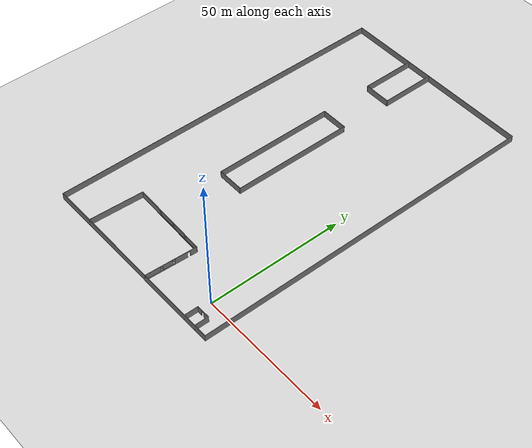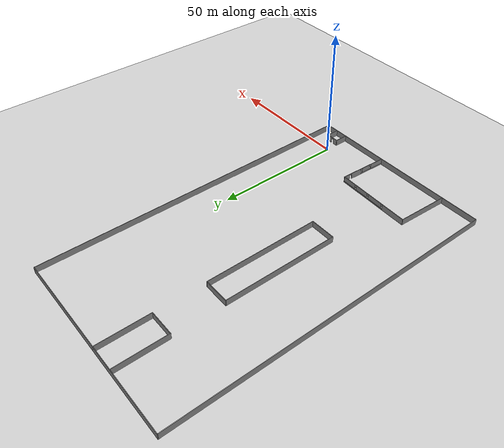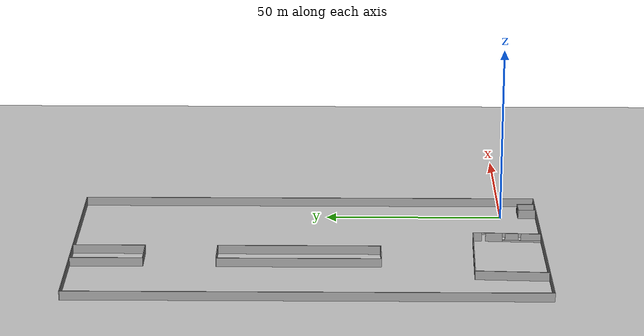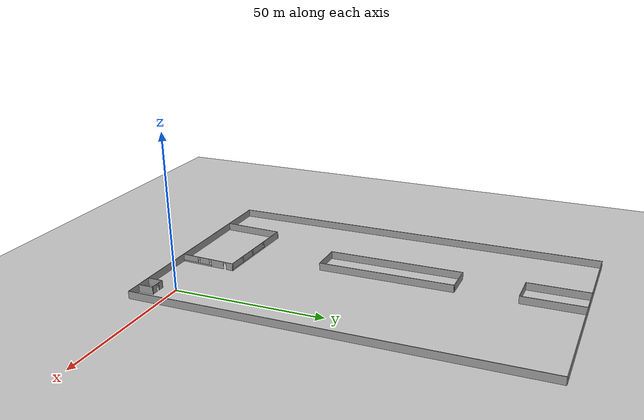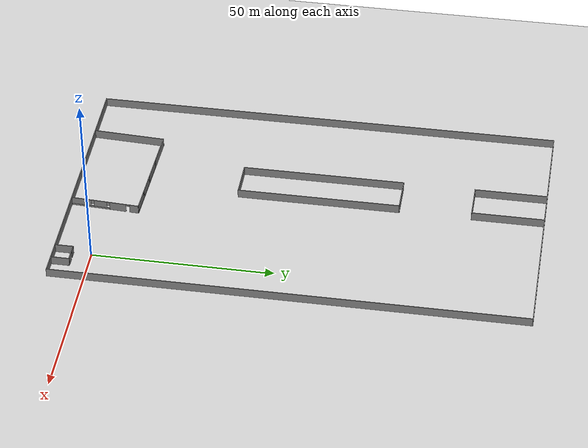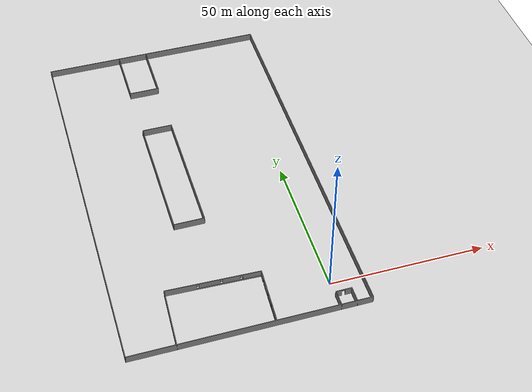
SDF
<?xml version="1.0" ?>
<sdf version="1.4">
  <!-- We use a custom world for the spido so that the camera angle is launched correctly -->

  <world name="default">

    <physics type='ode'>
      <max_step_size>0.002000</max_step_size>
      <real_time_update_rate>500.000000</real_time_update_rate>
    </physics>

    <!-- Global light source -->
    <include>
      <uri>model://sun</uri>
    </include>

    <!-- hide grid -->

    <!-- Focus camera on tall pendulum -->
    <gui fullscreen='0'>
      <camera name='user_camera'>
        <pose>4.927360 -4.376610 3.740080 0.000000 0.275643 2.356190</pose>
        <view_controller>orbit</view_controller>
      </camera>
    </gui>

    <!-- Custom groud plane -->
    <model name="ground_plane">
      <static>true</static>
      <link name="link">
        <collision name="collision">
          <geometry>
            <plane>
              <normal>0 0 1</normal>
              <size>75 130</size>
            </plane>
          </geometry>
          <pose>-27.5 55 0 0 0 0</pose>
          <surface>
            <friction>
              <ode>
                <mu>100</mu>
                <mu2>50</mu2>
              </ode>
            </friction>
          </surface>
        </collision>
        <visual name="visual">
          <cast_shadows>false</cast_shadows>
          <pose>-27.5 55 0 0 0 0</pose>
          <geometry>
            <plane>
              <normal>0 0 1</normal>
              <size>75 130</size>
            </plane>
          </geometry>
          <material>
            <script>
              <uri>file://media/materials/scripts/gazebo.material</uri>
              <name>Gazebo/Grey</name>
            </script>
          </material>
        </visual>
      </link>
    </model>

    <!-- st_cyr limits -->
    <model name='saint_cyr_limits'>
      <link name='Wall_27'>
        <collision name='Wall_27_Collision'>
          <geometry>
            <box>
              <size>75.2 0.2 2.5</size>
            </box>
          </geometry>
          <pose>0 0 1.25 0 -0 0</pose>
        </collision>
        <visual name='Wall_27_Visual'>
          <pose>0 0 1.25 0 -0 0</pose>
          <geometry>
            <box>
              <size>75.2 0.2 2.5</size>
            </box>
          </geometry>
          <material>
            <script>
              <uri>file://media/materials/scripts/gazebo.material</uri>
              <name>Gazebo/Grey</name>
            </script>
          </material>
        </visual>
        <velocity_decay>
          <linear>0</linear>
          <angular>0</angular>
        </velocity_decay>
        <pose>-27.5 -10 0 0 -0 0</pose>
      </link>
      <link name='Wall_29'>
        <collision name='Wall_29_Collision'>
          <geometry>
            <box>
              <size>130.2 0.2 2.5</size>
            </box>
          </geometry>
          <pose>0 0 1.25 0 -0 0</pose>
        </collision>
        <visual name='Wall_29_Visual'>
          <pose>0 0 1.25 0 -0 0</pose>
          <geometry>
            <box>
              <size>130.2 0.2 2.5</size>
            </box>
          </geometry>
          <material>
            <script>
              <uri>file://media/materials/scripts/gazebo.material</uri>
              <name>Gazebo/Grey</name>
            </script>
          </material>
        </visual>
        <velocity_decay>
          <linear>0</linear>
          <angular>0</angular>
        </velocity_decay>
        <pose>10 55 0 0 -0 1.5708</pose>
      </link>
      <link name='Wall_31'>
        <collision name='Wall_31_Collision'>
          <geometry>
            <box>
              <size>75.2 0.2 2.5</size>
            </box>
          </geometry>
          <pose>0 0 1.25 0 -0 0</pose>
        </collision>
        <visual name='Wall_31_Visual'>
          <pose>0 0 1.25 0 -0 0</pose>
          <geometry>
            <box>
              <size>75.2 0.2 2.5</size>
            </box>
          </geometry>
          <material>
            <script>
              <uri>file://media/materials/scripts/gazebo.material</uri>
              <name>Gazebo/Grey</name>
            </script>
          </material>
        </visual>
        <velocity_decay>
          <linear>0</linear>
          <angular>0</angular>
        </velocity_decay>
        <pose>-27.5 120 0 0 -0 3.14159</pose>
      </link>
      <link name='Wall_33'>
        <collision name='Wall_33_Collision'>
          <geometry>
            <box>
              <size>130.2 0.2 2.5</size>
            </box>
          </geometry>
          <pose>0 0 1.25 0 -0 0</pose>
        </collision>
        <visual name='Wall_33_Visual'>
          <pose>0 0 1.25 0 -0 0</pose>
          <geometry>
            <box>
              <size>130.2 0.2 2.5</size>
            </box>
          </geometry>
          <material>
            <script>
              <uri>file://media/materials/scripts/gazebo.material</uri>
              <name>Gazebo/Grey</name>
            </script>
          </material>
        </visual>
        <velocity_decay>
          <linear>0</linear>
          <angular>0</angular>
        </velocity_decay>
        <pose>-65 55 0 0 0 -1.5708</pose>
      </link>
      <static>1</static>
    </model>
    <!-- st_cyr big trees --> -->
    <model name='saint_cyr_trees'>
          <link name='Wall_0'>
      <collision name='Wall_0_Collision'>
        <geometry>
          <box>
            <size>20.225 0.2 2.5</size>
          </box>
        </geometry>
        <pose>0 0 1.25 0 -0 0</pose>
      </collision>
      <visual name='Wall_0_Visual'>
        <pose>0 0 1.25 0 -0 0</pose>
        <geometry>
          <box>
            <size>20.225 0.2 2.5</size>
          </box>
        </geometry>
        <material>
          <script>
            <uri>file://media/materials/scripts/gazebo.material</uri>
            <name>Gazebo/Grey</name>
          </script>
        </material>
      </visual>
      <velocity_decay>
        <linear>0</linear>
        <angular>0</angular>
      </velocity_decay>
      <pose>-49.5 0 0 0 -0 1.52084</pose>
    </link>
    <link name='Wall_1'>
      <pose>-34 9.5 0 0 0 -0.033321</pose>
      <visual name='Wall_1_Visual_0'>
        <pose>-10.1177 0 1.25 0 -0 0</pose>
        <geometry>
          <box>
            <size>9.98129 0.2 2.5</size>
          </box>
        </geometry>
        <material>
          <script>
            <uri>file://media/materials/scripts/gazebo.material</uri>
            <name>Gazebo/Grey</name>
          </script>
        </material>
      </visual>
      <collision name='Wall_1_Collision_0'>
        <geometry>
          <box>
            <size>9.98129 0.2 2.5</size>
          </box>
        </geometry>
        <pose>-10.1177 0 1.25 0 -0 0</pose>
      </collision>
      <visual name='Wall_1_Visual_1'>
        <pose>4.99065 0 0.25 0 -0 0</pose>
        <geometry>
          <box>
            <size>20.2354 0.2 0.5</size>
          </box>
        </geometry>
        <material>
          <script>
            <uri>file://media/materials/scripts/gazebo.material</uri>
            <name>Gazebo/Grey</name>
          </script>
        </material>
      </visual>
      <collision name='Wall_1_Collision_1'>
        <geometry>
          <box>
            <size>20.2354 0.2 0.5</size>
          </box>
        </geometry>
        <pose>4.99065 0 0.25 0 -0 0</pose>
      </collision>
      <visual name='Wall_1_Visual_2'>
        <pose>-1.11012 0 1.5 0 -0 0</pose>
        <geometry>
          <box>
            <size>6.43387 0.2 2</size>
          </box>
        </geometry>
        <material>
          <script>
            <uri>file://media/materials/scripts/gazebo.material</uri>
            <name>Gazebo/Grey</name>
          </script>
        </material>
      </visual>
      <collision name='Wall_1_Collision_2'>
        <geometry>
          <box>
            <size>6.43387 0.2 2</size>
          </box>
        </geometry>
        <pose>-1.11012 0 1.5 0 -0 0</pose>
      </collision>
      <visual name='Wall_1_Visual_3'>
        <pose>5.65364 0 1.5 0 -0 0</pose>
        <geometry>
          <box>
            <size>5.49367 0.2 2</size>
          </box>
        </geometry>
        <material>
          <script>
            <uri>file://media/materials/scripts/gazebo.material</uri>
            <name>Gazebo/Grey</name>
          </script>
        </material>
      </visual>
      <collision name='Wall_1_Collision_3'>
        <geometry>
          <box>
            <size>5.49367 0.2 2</size>
          </box>
        </geometry>
        <pose>5.65364 0 1.5 0 -0 0</pose>
      </collision>
      <visual name='Wall_1_Visual_4'>
        <pose>12.1544 0 1.5 0 -0 0</pose>
        <geometry>
          <box>
            <size>5.90787 0.2 2</size>
          </box>
        </geometry>
        <material>
          <script>
            <uri>file://media/materials/scripts/gazebo.material</uri>
            <name>Gazebo/Grey</name>
          </script>
        </material>
      </visual>
      <collision name='Wall_1_Collision_4'>
        <geometry>
          <box>
            <size>5.90787 0.2 2</size>
          </box>
        </geometry>
        <pose>12.1544 0 1.5 0 -0 0</pose>
      </collision>
      <visual name='Wall_1_Visual_5'>
        <pose>-4.72706 0 1.9 0 -0 0</pose>
        <geometry>
          <box>
            <size>0.8 0.2 1.2</size>
          </box>
        </geometry>
        <material>
          <script>
            <uri>file://media/materials/scripts/gazebo.material</uri>
            <name>Gazebo/Grey</name>
          </script>
        </material>
      </visual>
      <collision name='Wall_1_Collision_5'>
        <geometry>
          <box>
            <size>0.8 0.2 1.2</size>
          </box>
        </geometry>
        <pose>-4.72706 0 1.9 0 -0 0</pose>
      </collision>
      <visual name='Wall_1_Visual_6'>
        <pose>2.50681 0 1.9 0 -0 0</pose>
        <geometry>
          <box>
            <size>0.8 0.2 1.2</size>
          </box>
        </geometry>
        <material>
          <script>
            <uri>file://media/materials/scripts/gazebo.material</uri>
            <name>Gazebo/Grey</name>
          </script>
        </material>
      </visual>
      <collision name='Wall_1_Collision_6'>
        <geometry>
          <box>
            <size>0.8 0.2 1.2</size>
          </box>
        </geometry>
        <pose>2.50681 0 1.9 0 -0 0</pose>
      </collision>
      <visual name='Wall_1_Visual_7'>
        <pose>8.80048 0 1.9 0 -0 0</pose>
        <geometry>
          <box>
            <size>0.8 0.2 1.2</size>
          </box>
        </geometry>
        <material>
          <script>
            <uri>file://media/materials/scripts/gazebo.material</uri>
            <name>Gazebo/Grey</name>
          </script>
        </material>
      </visual>
      <collision name='Wall_1_Collision_7'>
        <geometry>
          <box>
            <size>0.8 0.2 1.2</size>
          </box>
        </geometry>
        <pose>8.80048 0 1.9 0 -0 0</pose>
      </collision>
    </link>
    <link name='Wall_10'>
      <collision name='Wall_10_Collision'>
        <geometry>
          <box>
            <size>45.2 0.2 2.5</size>
          </box>
        </geometry>
        <pose>0 0 1.25 0 -0 0</pose>
      </collision>
      <visual name='Wall_10_Visual'>
        <pose>0 0 1.25 0 -0 0</pose>
        <geometry>
          <box>
            <size>45.2 0.2 2.5</size>
          </box>
        </geometry>
        <material>
          <script>
            <uri>file://media/materials/scripts/gazebo.material</uri>
            <name>Gazebo/Grey</name>
          </script>
        </material>
      </visual>
      <velocity_decay>
        <linear>0</linear>
        <angular>0</angular>
      </velocity_decay>
      <pose>-30 57.5 0 0 -0 1.5708</pose>
    </link>
    <link name='Wall_11'>
      <collision name='Wall_11_Collision'>
        <geometry>
          <box>
            <size>10.2 0.2 2.5</size>
          </box>
        </geometry>
        <pose>0 0 1.25 0 -0 0</pose>
      </collision>
      <visual name='Wall_11_Visual'>
        <pose>0 0 1.25 0 -0 0</pose>
        <geometry>
          <box>
            <size>10.2 0.2 2.5</size>
          </box>
        </geometry>
        <material>
          <script>
            <uri>file://media/materials/scripts/gazebo.material</uri>
            <name>Gazebo/Grey</name>
          </script>
        </material>
      </visual>
      <velocity_decay>
        <linear>0</linear>
        <angular>0</angular>
      </velocity_decay>
      <pose>-35 80 0 0 -0 3.14159</pose>
    </link>
    <link name='Wall_13'>
      <collision name='Wall_13_Collision'>
        <geometry>
          <box>
            <size>20.2 0.2 2.5</size>
          </box>
        </geometry>
        <pose>0 0 1.25 0 -0 0</pose>
      </collision>
      <visual name='Wall_13_Visual'>
        <pose>0 0 1.25 0 -0 0</pose>
        <geometry>
          <box>
            <size>20.2 0.2 2.5</size>
          </box>
        </geometry>
        <material>
          <script>
            <uri>file://media/materials/scripts/gazebo.material</uri>
            <name>Gazebo/Grey</name>
          </script>
        </material>
      </visual>
      <velocity_decay>
        <linear>0</linear>
        <angular>0</angular>
      </velocity_decay>
      <pose>-40 110 0 0 0 -1.5708</pose>
    </link>
    <link name='Wall_14'>
      <collision name='Wall_14_Collision'>
        <geometry>
          <box>
            <size>10.2 0.2 2.5</size>
          </box>
        </geometry>
        <pose>0 0 1.25 0 -0 0</pose>
      </collision>
      <visual name='Wall_14_Visual'>
        <pose>0 0 1.25 0 -0 0</pose>
        <geometry>
          <box>
            <size>10.2 0.2 2.5</size>
          </box>
        </geometry>
        <material>
          <script>
            <uri>file://media/materials/scripts/gazebo.material</uri>
            <name>Gazebo/Grey</name>
          </script>
        </material>
      </visual>
      <velocity_decay>
        <linear>0</linear>
        <angular>0</angular>
      </velocity_decay>
      <pose>-35 100 0 0 -0 0</pose>
    </link>
    <link name='Wall_15'>
      <collision name='Wall_15_Collision'>
        <geometry>
          <box>
            <size>20.2 0.2 2.5</size>
          </box>
        </geometry>
        <pose>0 0 1.25 0 -0 0</pose>
      </collision>
      <visual name='Wall_15_Visual'>
        <pose>0 0 1.25 0 -0 0</pose>
        <geometry>
          <box>
            <size>20.2 0.2 2.5</size>
          </box>
        </geometry>
        <material>
          <script>
            <uri>file://media/materials/scripts/gazebo.material</uri>
            <name>Gazebo/Grey</name>
          </script>
        </material>
      </visual>
      <velocity_decay>
        <linear>0</linear>
        <angular>0</angular>
      </velocity_decay>
      <pose>-30 110 0 0 -0 1.5708</pose>
    </link>
    <link name='Wall_16'>
      <collision name='Wall_16_Collision'>
        <geometry>
          <box>
            <size>10.2 0.2 2.5</size>
          </box>
        </geometry>
        <pose>0 0 1.25 0 -0 0</pose>
      </collision>
      <visual name='Wall_16_Visual'>
        <pose>0 0 1.25 0 -0 0</pose>
        <geometry>
          <box>
            <size>10.2 0.2 2.5</size>
          </box>
        </geometry>
        <material>
          <script>
            <uri>file://media/materials/scripts/gazebo.material</uri>
            <name>Gazebo/Grey</name>
          </script>
        </material>
      </visual>
      <velocity_decay>
        <linear>0</linear>
        <angular>0</angular>
      </velocity_decay>
      <pose>-35 120 0 0 -0 3.14159</pose>
    </link>
    <link name='Wall_2'>
      <pose>-19.5 -0.5 0 0 0 -1.62338</pose>
      <visual name='Wall_2_Visual_0'>
        <pose>-8.31308 0 1.25 0 -0 0</pose>
        <geometry>
          <box>
            <size>2.60014 0.2 2.5</size>
          </box>
        </geometry>
        <material>
          <script>
            <uri>file://media/materials/scripts/gazebo.material</uri>
            <name>Gazebo/Grey</name>
          </script>
        </material>
      </visual>
      <collision name='Wall_2_Collision_0'>
        <geometry>
          <box>
            <size>2.60014 0.2 2.5</size>
          </box>
        </geometry>
        <pose>-8.31308 0 1.25 0 -0 0</pose>
      </collision>
      <visual name='Wall_2_Visual_1'>
        <pose>-3.68568 0 1.25 0 -0 0</pose>
        <geometry>
          <box>
            <size>4.65465 0.2 2.5</size>
          </box>
        </geometry>
        <material>
          <script>
            <uri>file://media/materials/scripts/gazebo.material</uri>
            <name>Gazebo/Grey</name>
          </script>
        </material>
      </visual>
      <collision name='Wall_2_Collision_1'>
        <geometry>
          <box>
            <size>4.65465 0.2 2.5</size>
          </box>
        </geometry>
        <pose>-3.68568 0 1.25 0 -0 0</pose>
      </collision>
      <visual name='Wall_2_Visual_2'>
        <pose>4.1274 0 0.25 0 -0 0</pose>
        <geometry>
          <box>
            <size>10.9715 0.2 0.5</size>
          </box>
        </geometry>
        <material>
          <script>
            <uri>file://media/materials/scripts/gazebo.material</uri>
            <name>Gazebo/Grey</name>
          </script>
        </material>
      </visual>
      <collision name='Wall_2_Collision_2'>
        <geometry>
          <box>
            <size>10.9715 0.2 0.5</size>
          </box>
        </geometry>
        <pose>4.1274 0 0.25 0 -0 0</pose>
      </collision>
      <visual name='Wall_2_Visual_3'>
        <pose>1.25925 0 1.5 0 -0 0</pose>
        <geometry>
          <box>
            <size>3.63521 0.2 2</size>
          </box>
        </geometry>
        <material>
          <script>
            <uri>file://media/materials/scripts/gazebo.material</uri>
            <name>Gazebo/Grey</name>
          </script>
        </material>
      </visual>
      <collision name='Wall_2_Collision_3'>
        <geometry>
          <box>
            <size>3.63521 0.2 2</size>
          </box>
        </geometry>
        <pose>1.25925 0 1.5 0 -0 0</pose>
      </collision>
      <visual name='Wall_2_Visual_4'>
        <pose>6.745 0 1.5 0 -0 0</pose>
        <geometry>
          <box>
            <size>5.7363 0.2 2</size>
          </box>
        </geometry>
        <material>
          <script>
            <uri>file://media/materials/scripts/gazebo.material</uri>
            <name>Gazebo/Grey</name>
          </script>
        </material>
      </visual>
      <collision name='Wall_2_Collision_4'>
        <geometry>
          <box>
            <size>5.7363 0.2 2</size>
          </box>
        </geometry>
        <pose>6.745 0 1.5 0 -0 0</pose>
      </collision>
      <visual name='Wall_2_Visual_5'>
        <pose>-0.958357 0 1.9 0 -0 0</pose>
        <geometry>
          <box>
            <size>0.8 0.2 1.2</size>
          </box>
        </geometry>
        <material>
          <script>
            <uri>file://media/materials/scripts/gazebo.material</uri>
            <name>Gazebo/Grey</name>
          </script>
        </material>
      </visual>
      <collision name='Wall_2_Collision_5'>
        <geometry>
          <box>
            <size>0.8 0.2 1.2</size>
          </box>
        </geometry>
        <pose>-0.958357 0 1.9 0 -0 0</pose>
      </collision>
      <visual name='Wall_2_Visual_6'>
        <pose>3.47685 0 1.9 0 -0 0</pose>
        <geometry>
          <box>
            <size>0.8 0.2 1.2</size>
          </box>
        </geometry>
        <material>
          <script>
            <uri>file://media/materials/scripts/gazebo.material</uri>
            <name>Gazebo/Grey</name>
          </script>
        </material>
      </visual>
      <collision name='Wall_2_Collision_6'>
        <geometry>
          <box>
            <size>0.8 0.2 1.2</size>
          </box>
        </geometry>
        <pose>3.47685 0 1.9 0 -0 0</pose>
      </collision>
      <visual name='Wall_2_Visual_7'>
        <pose>-6.51301 0 2.25 0 -0 0</pose>
        <geometry>
          <box>
            <size>1 0.2 0.5</size>
          </box>
        </geometry>
        <material>
          <script>
            <uri>file://media/materials/scripts/gazebo.material</uri>
            <name>Gazebo/Grey</name>
          </script>
        </material>
      </visual>
      <collision name='Wall_2_Collision_7'>
        <geometry>
          <box>
            <size>1 0.2 0.5</size>
          </box>
        </geometry>
        <pose>-6.51301 0 2.25 0 -0 0</pose>
      </collision>
    </link>
    <link name='Wall_4'>
      <collision name='Wall_4_Collision'>
        <geometry>
          <box>
            <size>5.2 0.2 2.5</size>
          </box>
        </geometry>
        <pose>0 0 1.25 0 -0 0</pose>
      </collision>
      <visual name='Wall_4_Visual'>
        <pose>0 0 1.25 0 -0 0</pose>
        <geometry>
          <box>
            <size>5.2 0.2 2.5</size>
          </box>
        </geometry>
        <material>
          <script>
            <uri>file://media/materials/scripts/gazebo.material</uri>
            <name>Gazebo/Grey</name>
          </script>
        </material>
      </visual>
      <velocity_decay>
        <linear>0</linear>
        <angular>0</angular>
      </velocity_decay>
      <pose>0 -7.5 0 0 -0 1.5708</pose>
    </link>
    <link name='Wall_5'>
      <pose>2.5 -5 0 0 -0 0</pose>
      <visual name='Wall_5_Visual_0'>
        <pose>-1.61975 0 1.25 0 -0 0</pose>
        <geometry>
          <box>
            <size>1.9605 0.2 2.5</size>
          </box>
        </geometry>
        <material>
          <script>
            <uri>file://media/materials/scripts/gazebo.material</uri>
            <name>Gazebo/Grey</name>
          </script>
        </material>
      </visual>
      <collision name='Wall_5_Collision_0'>
        <geometry>
          <box>
            <size>1.9605 0.2 2.5</size>
          </box>
        </geometry>
        <pose>-1.61975 0 1.25 0 -0 0</pose>
      </collision>
      <visual name='Wall_5_Visual_1'>
        <pose>1.48025 0 1.25 0 -0 0</pose>
        <geometry>
          <box>
            <size>2.2395 0.2 2.5</size>
          </box>
        </geometry>
        <material>
          <script>
            <uri>file://media/materials/scripts/gazebo.material</uri>
            <name>Gazebo/Grey</name>
          </script>
        </material>
      </visual>
      <collision name='Wall_5_Collision_1'>
        <geometry>
          <box>
            <size>2.2395 0.2 2.5</size>
          </box>
        </geometry>
        <pose>1.48025 0 1.25 0 -0 0</pose>
      </collision>
      <visual name='Wall_5_Visual_2'>
        <pose>-0.139498 0 2.25 0 -0 0</pose>
        <geometry>
          <box>
            <size>1 0.2 0.5</size>
          </box>
        </geometry>
        <material>
          <script>
            <uri>file://media/materials/scripts/gazebo.material</uri>
            <name>Gazebo/Grey</name>
          </script>
        </material>
      </visual>
      <collision name='Wall_5_Collision_2'>
        <geometry>
          <box>
            <size>1 0.2 0.5</size>
          </box>
        </geometry>
        <pose>-0.139498 0 2.25 0 -0 0</pose>
      </collision>
    </link>
    <link name='Wall_6'>
      <collision name='Wall_6_Collision'>
        <geometry>
          <box>
            <size>5.2 0.2 2.5</size>
          </box>
        </geometry>
        <pose>0 0 1.25 0 -0 0</pose>
      </collision>
      <visual name='Wall_6_Visual'>
        <pose>0 0 1.25 0 -0 0</pose>
        <geometry>
          <box>
            <size>5.2 0.2 2.5</size>
          </box>
        </geometry>
        <material>
          <script>
            <uri>file://media/materials/scripts/gazebo.material</uri>
            <name>Gazebo/Grey</name>
          </script>
        </material>
      </visual>
      <velocity_decay>
        <linear>0</linear>
        <angular>0</angular>
      </velocity_decay>
      <pose>5 -7.5 0 0 0 -1.5708</pose>
    </link>
    <link name='Wall_8'>
      <collision name='Wall_8_Collision'>
        <geometry>
          <box>
            <size>45.2 0.2 2.5</size>
          </box>
        </geometry>
        <pose>0 0 1.25 0 -0 0</pose>
      </collision>
      <visual name='Wall_8_Visual'>
        <pose>0 0 1.25 0 -0 0</pose>
        <geometry>
          <box>
            <size>45.2 0.2 2.5</size>
          </box>
        </geometry>
        <material>
          <script>
            <uri>file://media/materials/scripts/gazebo.material</uri>
            <name>Gazebo/Grey</name>
          </script>
        </material>
      </visual>
      <velocity_decay>
        <linear>0</linear>
        <angular>0</angular>
      </velocity_decay>
      <pose>-40 57.5 0 0 0 -1.5708</pose>
    </link>
    <link name='Wall_9'>
      <collision name='Wall_9_Collision'>
        <geometry>
          <box>
            <size>10.2 0.2 2.5</size>
          </box>
        </geometry>
        <pose>0 0 1.25 0 -0 0</pose>
      </collision>
      <visual name='Wall_9_Visual'>
        <pose>0 0 1.25 0 -0 0</pose>
        <geometry>
          <box>
            <size>10.2 0.2 2.5</size>
          </box>
        </geometry>
        <material>
          <script>
            <uri>file://media/materials/scripts/gazebo.material</uri>
            <name>Gazebo/Grey</name>
          </script>
        </material>
      </visual>
      <velocity_decay>
        <linear>0</linear>
        <angular>0</angular>
      </velocity_decay>
      <pose>-35 35 0 0 -0 0</pose>
    </link>
    <static>1</static>
    </model>
  </world>
</sdf>
